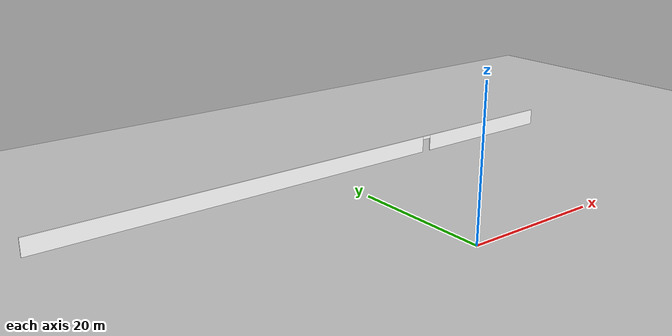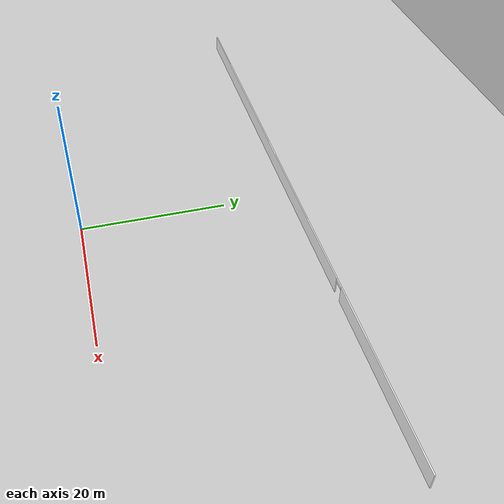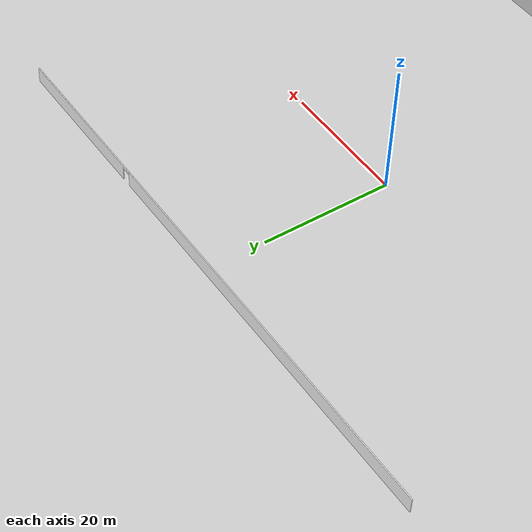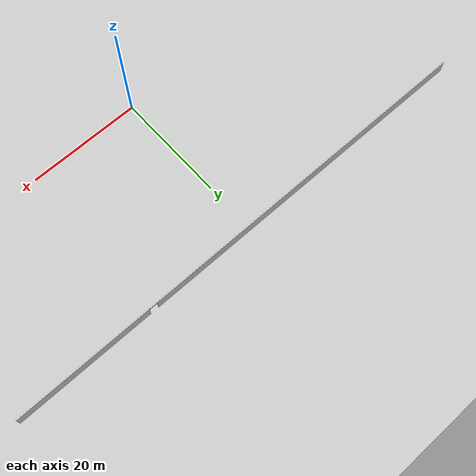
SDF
<sdf version="1.6">
 <world name="default">
  <model name="ground_plane">
   <static>1</static>
   <link name="link">
    <collision name="collision">
     <geometry><plane><normal>0 0 1</normal><size>100 100</size></plane></geometry>
     <surface><friction><ode><mu>100</mu><mu2>50</mu2></ode></friction></surface>
    </collision>
    <visual name="visual">
     <cast_shadows>0</cast_shadows>
     <geometry><plane><normal>0 0 1</normal><size>100 100</size></plane></geometry>
     <material>
      <script>
       <uri>model://office_env/materials/scripts</uri>
       <uri>model://office_env/materials/textures</uri>
       <name>wall</name>
      </script>
     </material>
    </visual>
   </link>
  </model>
  <model name="aule_N">
   <pose>0.1887 -1.4289 0 0 -0 0</pose>
   <link name="Wall_42">
    <pose>0.270301 30.9455 0 0 -0 3.14159</pose>
    <visual name="Wall_42_Visual_0">
     <pose>-32.0366 0 1.25 0 -0 0</pose>
     <geometry><box><size>24.1768 0.15 2.5</size></box></geometry>
     <material>
      <script>
       <uri>model://office_env/materials/scripts</uri>
       <uri>model://office_env/materials/textures</uri>
       <name>wall</name>
      </script>
      <ambient>1 1 1 1</ambient>
     </material>
    </visual>
    <collision name="Wall_42_Collision_0">
     <geometry><box><size>24.1768 0.15 2.5</size></box></geometry>
     <pose>-32.0366 0 1.25 0 -0 0</pose>
    </collision>
    <visual name="Wall_42_Visual_1">
     <pose>12.8384 0 1.25 0 -0 0</pose>
     <geometry><box><size>62.5732 0.15 2.5</size></box></geometry>
     <material>
      <script>
       <uri>model://office_env/materials/scripts</uri>
       <uri>model://office_env/materials/textures</uri>
       <name>wall</name>
      </script>
      <ambient>1 1 1 1</ambient>
     </material>
    </visual>
    <collision name="Wall_42_Collision_1">
     <geometry><box><size>62.5732 0.15 2.5</size></box></geometry>
     <pose>12.8384 0 1.25 0 -0 0</pose>
    </collision>
    <visual name="Wall_42_Visual_2">
     <pose>-19.1982 0 2.25 0 -0 0</pose>
     <geometry><box><size>1.5 0.15 0.5</size></box></geometry>
     <material>
      <script>
       <uri>model://office_env/materials/scripts</uri>
       <uri>model://office_env/materials/textures</uri>
       <name>wall</name>
      </script>
      <ambient>1 1 1 1</ambient>
     </material>
    </visual>
    <collision name="Wall_42_Collision_2">
     <geometry><box><size>1.5 0.15 0.5</size></box></geometry>
     <pose>-19.1982 0 2.25 0 -0 0</pose>
    </collision>
   </link>
   <static>1</static>
  </model>
 </world>
</sdf>
